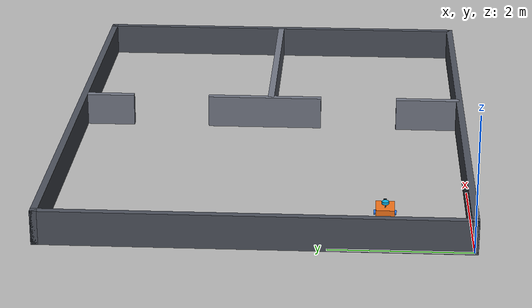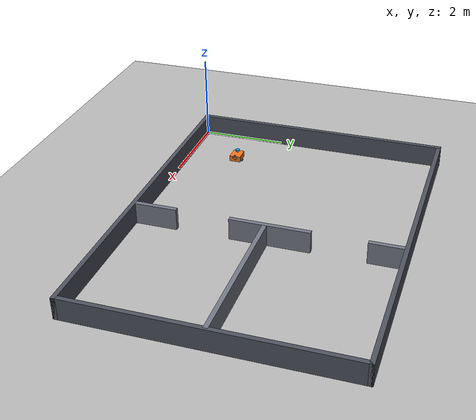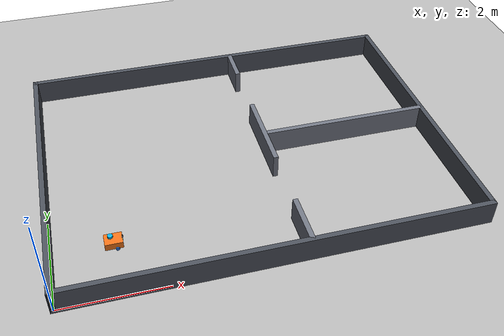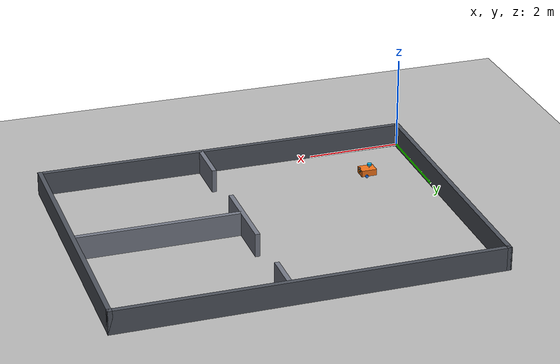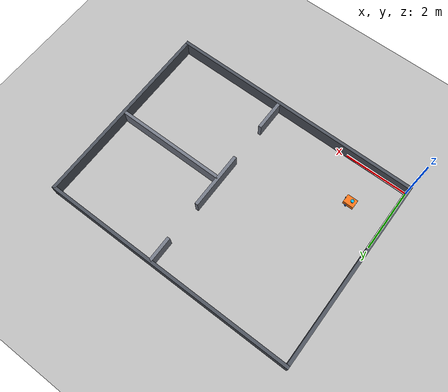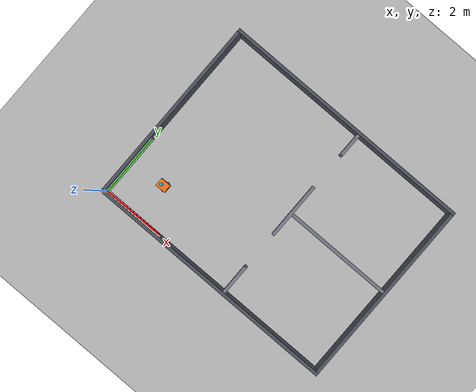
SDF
<sdf version="1.8">
 <world name="explore_room">
  <scene>
   <ambient>0.65 0.65 0.65 1.0</ambient>
   <background>0.80 0.84 0.88 1.0</background>
   <grid>false</grid>
   <origin_visual>false</origin_visual>
  </scene>
  <physics name="1ms" type="ignored">
   <max_step_size>0.001</max_step_size>
   <real_time_factor>1.0</real_time_factor>
  </physics>
  <plugin filename="gz-sim-physics-system" name="gz::sim::systems::Physics"/>
  <plugin filename="gz-sim-user-commands-system" name="gz::sim::systems::UserCommands"/>
  <plugin filename="gz-sim-scene-broadcaster-system" name="gz::sim::systems::SceneBroadcaster"/>
  <plugin filename="gz-sim-sensors-system" name="gz::sim::systems::Sensors">
   <render_engine>ogre2</render_engine>
  </plugin>
  <light name="sun" type="directional">
   <pose>4 3 20 0 0 0</pose>
   <diffuse>0.95 0.95 0.95 1</diffuse>
   <specular>0.3 0.3 0.3 1</specular>
   <direction>-0.4 0.3 -0.85</direction>
  </light>
  <model name="ground_plane">
   <static>true</static>
   <link name="link">
    <collision name="collision">
     <geometry><plane><normal>0 0 1</normal><size>40 40</size></plane></geometry>
    </collision>
    <visual name="visual">
     <geometry><plane><normal>0 0 1</normal><size>40 40</size></plane></geometry>
     <material><ambient>0.72 0.72 0.72 1</ambient><diffuse>0.72 0.72 0.72 1</diffuse></material>
    </visual>
   </link>
  </model>
  <model name="walls">
   <static>true</static>
   <link name="wall_south">
    <pose>4.0 0.0 0.25 0 0 0</pose>
    <collision name="col"><geometry><box><size>8.1 0.1 0.5</size></box></geometry></collision>
    <visual name="vis">
     <geometry><box><size>8.1 0.1 0.5</size></box></geometry>
     <material><ambient>0.30 0.32 0.36 1</ambient><diffuse>0.30 0.32 0.36 1</diffuse></material>
    </visual>
   </link>
   <link name="wall_north">
    <pose>4.0 6.0 0.25 0 0 0</pose>
    <collision name="col"><geometry><box><size>8.1 0.1 0.5</size></box></geometry></collision>
    <visual name="vis">
     <geometry><box><size>8.1 0.1 0.5</size></box></geometry>
     <material><ambient>0.30 0.32 0.36 1</ambient><diffuse>0.30 0.32 0.36 1</diffuse></material>
    </visual>
   </link>
   <link name="wall_west">
    <pose>0.0 3.0 0.25 0 0 0</pose>
    <collision name="col"><geometry><box><size>0.1 6.1 0.5</size></box></geometry></collision>
    <visual name="vis">
     <geometry><box><size>0.1 6.1 0.5</size></box></geometry>
     <material><ambient>0.30 0.32 0.36 1</ambient><diffuse>0.30 0.32 0.36 1</diffuse></material>
    </visual>
   </link>
   <link name="wall_east">
    <pose>8.0 3.0 0.25 0 0 0</pose>
    <collision name="col"><geometry><box><size>0.1 6.1 0.5</size></box></geometry></collision>
    <visual name="vis">
     <geometry><box><size>0.1 6.1 0.5</size></box></geometry>
     <material><ambient>0.30 0.32 0.36 1</ambient><diffuse>0.30 0.32 0.36 1</diffuse></material>
    </visual>
   </link>
   <link name="partition_1">
    <pose>4.5 0.5 0.25 0 0 0</pose>
    <collision name="col"><geometry><box><size>0.1 1.0 0.5</size></box></geometry></collision>
    <visual name="vis">
     <geometry><box><size>0.1 1.0 0.5</size></box></geometry>
     <material><ambient>0.45 0.47 0.52 1</ambient><diffuse>0.45 0.47 0.52 1</diffuse></material>
    </visual>
   </link>
   <link name="partition_2">
    <pose>4.5 3.1 0.25 0 0 0</pose>
    <collision name="col"><geometry><box><size>0.1 1.8 0.5</size></box></geometry></collision>
    <visual name="vis">
     <geometry><box><size>0.1 1.8 0.5</size></box></geometry>
     <material><ambient>0.45 0.47 0.52 1</ambient><diffuse>0.45 0.47 0.52 1</diffuse></material>
    </visual>
   </link>
   <link name="partition_3">
    <pose>4.5 5.6 0.25 0 0 0</pose>
    <collision name="col"><geometry><box><size>0.1 0.8 0.5</size></box></geometry></collision>
    <visual name="vis">
     <geometry><box><size>0.1 0.8 0.5</size></box></geometry>
     <material><ambient>0.45 0.47 0.52 1</ambient><diffuse>0.45 0.47 0.52 1</diffuse></material>
    </visual>
   </link>
   <link name="partition_bc">
    <pose>6.25 3.0 0.25 0 0 0</pose>
    <collision name="col"><geometry><box><size>3.5 0.1 0.5</size></box></geometry></collision>
    <visual name="vis">
     <geometry><box><size>3.5 0.1 0.5</size></box></geometry>
     <material><ambient>0.45 0.47 0.52 1</ambient><diffuse>0.45 0.47 0.52 1</diffuse></material>
    </visual>
   </link>
  </model>
  <include><uri>model://hc_robot</uri><name>hc_robot</name><pose>1.2 1.2 0.03 0 0 0</pose></include>
 </world>
</sdf>

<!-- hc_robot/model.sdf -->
<sdf version="1.8">
  <model name="hc_robot">
    <pose>0 0 0.033 0 0 0</pose>

    <!-- BASE LINK / CHASSIS -->
    <link name="base_link">
      <inertial>
        <pose>-0.0585 0 0.059 0 0 0</pose>
        <mass>1.2</mass>
        <inertia>
          <ixx>0.01</ixx>
          <ixy>0</ixy>
          <ixz>0</ixz>
          <iyy>0.015</iyy>
          <iyz>0</iyz>
          <izz>0.02</izz>
        </inertia>
      </inertial>

      <!-- Chassis Visual (Orange Body) -->
      <visual name="chassis_visual">
        <pose>-0.0585 0 0.059 0 0 0</pose>
        <geometry>
          <box>
            <size>0.335 0.265 0.138</size>
          </box>
        </geometry>
        <material>
          <ambient>0.95 0.45 0.1 1</ambient>
          <diffuse>0.95 0.45 0.1 1</diffuse>
          <specular>0.5 0.5 0.5 1</specular>
        </material>
      </visual>

      <collision name="chassis_collision">
        <pose>-0.0585 0 0.059 0 0 0</pose>
        <geometry>
          <box>
            <size>0.335 0.265 0.138</size>
          </box>
        </geometry>
      </collision>

      <!-- Caster Wheel (White Low-Friction Ball) -->
      <visual name="caster_visual">
        <pose>-0.151 0 -0.023 0 0 0</pose>
        <geometry>
          <sphere>
            <radius>0.01</radius>
          </sphere>
        </geometry>
        <material>
          <ambient>0.9 0.9 0.9 1</ambient>
          <diffuse>0.9 0.9 0.9 1</diffuse>
        </material>
      </visual>

      <collision name="caster_collision">
        <pose>-0.151 0 -0.023 0 0 0</pose>
        <geometry>
          <sphere>
            <radius>0.01</radius>
          </sphere>
        </geometry>
        <surface>
          <friction>
            <ode>
              <mu>0.001</mu>
              <mu2>0.001</mu2>
            </ode>
          </friction>
        </surface>
      </collision>

      <!-- LiDAR Sensor Stand & Puck -->
      <visual name="lidar_stand">
        <pose>-0.104 0 0.15 0 0 0</pose>
        <geometry>
          <cylinder>
            <radius>0.01</radius>
            <length>0.1</length>
          </cylinder>
        </geometry>
        <material>
          <ambient>0.1 0.1 0.1 1</ambient>
          <diffuse>0.1 0.1 0.1 1</diffuse>
        </material>
      </visual>

      <visual name="lidar_puck">
        <pose>-0.104 0 0.20 0 0 0</pose>
        <geometry>
          <cylinder>
            <radius>0.05</radius>
            <length>0.04</length>
          </cylinder>
        </geometry>
        <material>
          <ambient>0.05 0.7 0.9 1</ambient>
          <diffuse>0.05 0.7 0.9 1</diffuse>
        </material>
      </visual>

      <collision name="lidar_collision">
        <pose>-0.104 0 0.20 0 0 0</pose>
        <geometry>
          <cylinder>
            <radius>0.05</radius>
            <length>0.04</length>
          </cylinder>
        </geometry>
      </collision>

      <!-- Camera Mount -->
      <visual name="camera_visual">
        <pose>0.11 0 0.14 0 0.18 0</pose>
        <geometry>
          <box>
            <size>0.02 0.04 0.04</size>
          </box>
        </geometry>
        <material>
          <ambient>0.1 0.1 0.1 1</ambient>
          <diffuse>0.1 0.1 0.1 1</diffuse>
        </material>
      </visual>

      <!-- Robot Eyes (Display Face) -->
      <visual name="face_eye_left">
        <pose>0.11 0.05 0.09 0 1.5708 0</pose>
        <geometry>
          <cylinder>
            <radius>0.015</radius>
            <length>0.005</length>
          </cylinder>
        </geometry>
        <material>
          <ambient>0.1 0.8 1.0 1</ambient>
          <diffuse>0.1 0.8 1.0 1</diffuse>
          <emissive>0.1 0.8 1.0 1</emissive>
        </material>
      </visual>

      <visual name="face_eye_right">
        <pose>0.11 -0.05 0.09 0 1.5708 0</pose>
        <geometry>
          <cylinder>
            <radius>0.015</radius>
            <length>0.005</length>
          </cylinder>
        </geometry>
        <material>
          <ambient>0.1 0.8 1.0 1</ambient>
          <diffuse>0.1 0.8 1.0 1</diffuse>
          <emissive>0.1 0.8 1.0 1</emissive>
        </material>
      </visual>

      <!-- Robot Mouth / LED Screen Indicator -->
      <visual name="face_mouth">
        <pose>0.11 0 0.05 0 1.5708 0</pose>
        <geometry>
          <box>
            <size>0.01 0.06 0.005</size>
          </box>
        </geometry>
        <material>
          <ambient>0.1 1.0 0.3 1</ambient>
          <diffuse>0.1 1.0 0.3 1</diffuse>
          <emissive>0.1 1.0 0.3 1</emissive>
        </material>
      </visual>

      <!-- LiDAR Sensor Plugin (Visual 360 Rays Enabled, 8m Range Capped to Room) -->
      <sensor name="laser" type="gpu_lidar">
        <pose>-0.104 0 0.20 0 0 0</pose>
        <visualize>true</visualize>
        <update_rate>15</update_rate>
        <topic>/scan</topic>
        <gz_frame_id>laser_frame</gz_frame_id>
        <lidar>
          <scan>
            <horizontal>
              <samples>360</samples>
              <resolution>1</resolution>
              <min_angle>-3.14159</min_angle>
              <max_angle>3.14159</max_angle>
            </horizontal>
            <vertical>
              <samples>1</samples>
              <resolution>1</resolution>
              <min_angle>0.0</min_angle>
              <max_angle>0.0</max_angle>
            </vertical>
          </scan>
          <range>
            <min>0.12</min>
            <max>8.0</max>
            <resolution>0.01</resolution>
          </range>
        </lidar>
      </sensor>

      <!-- Camera Sensor Plugin (Matched to camera.xacro pose and optical frame) -->
      <sensor name="camera" type="camera">
        <pose>0.11 0 0.14 0 0.18 0</pose>
        <visualize>false</visualize>
        <update_rate>15</update_rate>
        <topic>/camera/image_raw</topic>
        <gz_frame_id>camera_link_optical</gz_frame_id>
        <camera>
          <camera_info_topic>/camera/camera_info</camera_info_topic>
          <horizontal_fov>1.1</horizontal_fov>
          <image>
            <format>R8G8B8</format>
            <width>640</width>
            <height>480</height>
          </image>
          <clip>
            <near>0.05</near>
            <far>10.0</far>
          </clip>
        </camera>
      </sensor>
    </link>

    <!-- LEFT WHEEL -->
    <link name="left_wheel">
      <pose>0 0.1485 0 -1.5708 0 0</pose>
      <inertial>
        <mass>0.08</mass>
        <inertia>
          <ixx>0.0001</ixx>
          <ixy>0</ixy>
          <ixz>0</ixz>
          <iyy>0.0001</iyy>
          <iyz>0</iyz>
          <izz>0.0001</izz>
        </inertia>
      </inertial>
      <visual name="visual">
        <geometry>
          <cylinder>
            <radius>0.033</radius>
            <length>0.026</length>
          </cylinder>
        </geometry>
        <material>
          <ambient>0.15 0.45 0.9 1</ambient>
          <diffuse>0.15 0.45 0.9 1</diffuse>
        </material>
      </visual>
      <collision name="collision">
        <geometry>
          <sphere>
            <radius>0.033</radius>
          </sphere>
        </geometry>
        <surface>
          <friction>
            <ode>
              <mu>1.0</mu>
              <mu2>1.0</mu2>
            </ode>
          </friction>
        </surface>
      </collision>
    </link>

    <!-- RIGHT WHEEL -->
    <link name="right_wheel">
      <pose>0 -0.1485 0 1.5708 0 0</pose>
      <inertial>
        <mass>0.08</mass>
        <inertia>
          <ixx>0.0001</ixx>
          <ixy>0</ixy>
          <ixz>0</ixz>
          <iyy>0.0001</iyy>
          <iyz>0</iyz>
          <izz>0.0001</izz>
        </inertia>
      </inertial>
      <visual name="visual">
        <geometry>
          <cylinder>
            <radius>0.033</radius>
            <length>0.026</length>
          </cylinder>
        </geometry>
        <material>
          <ambient>0.15 0.45 0.9 1</ambient>
          <diffuse>0.15 0.45 0.9 1</diffuse>
        </material>
      </visual>
      <collision name="collision">
        <geometry>
          <sphere>
            <radius>0.033</radius>
          </sphere>
        </geometry>
        <surface>
          <friction>
            <ode>
              <mu>1.0</mu>
              <mu2>1.0</mu2>
            </ode>
          </friction>
        </surface>
      </collision>
    </link>

    <!-- REVOLUTE JOINTS FOR WHEELS (Axle rotation around horizontal Y-axis of base_link) -->
    <joint name="left_wheel_joint" type="revolute">
      <parent>base_link</parent>
      <child>left_wheel</child>
      <axis>
        <xyz expressed_in="base_link">0 1 0</xyz>
        <limit>
          <lower>-1e16</lower>
          <upper>1e16</upper>
        </limit>
      </axis>
    </joint>

    <joint name="right_wheel_joint" type="revolute">
      <parent>base_link</parent>
      <child>right_wheel</child>
      <axis>
        <xyz expressed_in="base_link">0 1 0</xyz>
        <limit>
          <lower>-1e16</lower>
          <upper>1e16</upper>
        </limit>
      </axis>
    </joint>

    <!-- DIFF DRIVE SYSTEM PLUGIN (GAZEBO HARMONIC) -->
    <plugin filename="gz-sim-diff-drive-system" name="gz::sim::systems::DiffDrive">
      <left_joint>left_wheel_joint</left_joint>
      <right_joint>right_wheel_joint</right_joint>
      <wheel_separation>0.297</wheel_separation>
      <wheel_radius>0.033</wheel_radius>
      <topic>cmd_vel</topic>
      <odom_topic>odom</odom_topic>
      <tf_topic>tf</tf_topic>
      <frame_id>odom</frame_id>
      <child_frame_id>base_link</child_frame_id>
    </plugin>
  </model>
</sdf>
